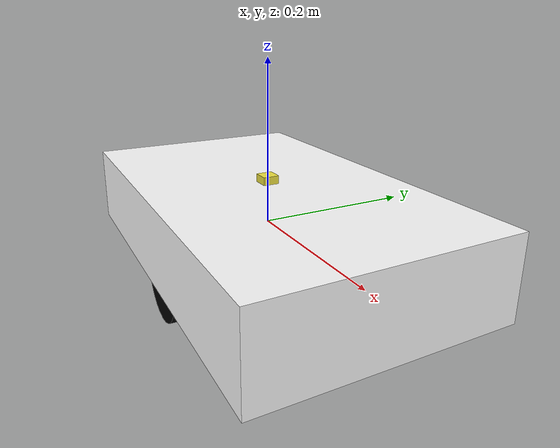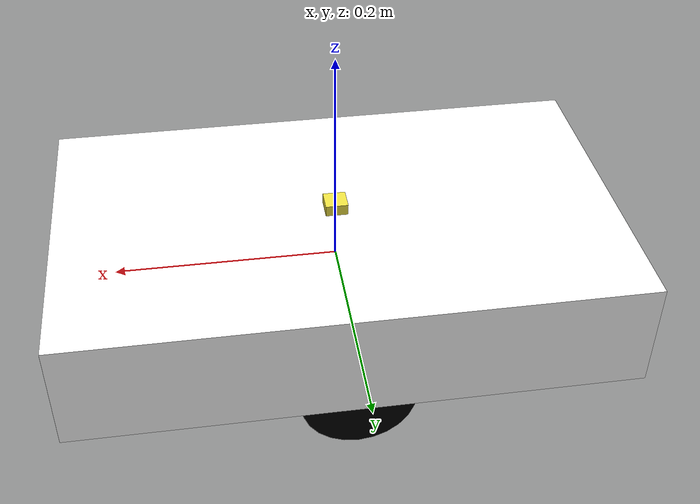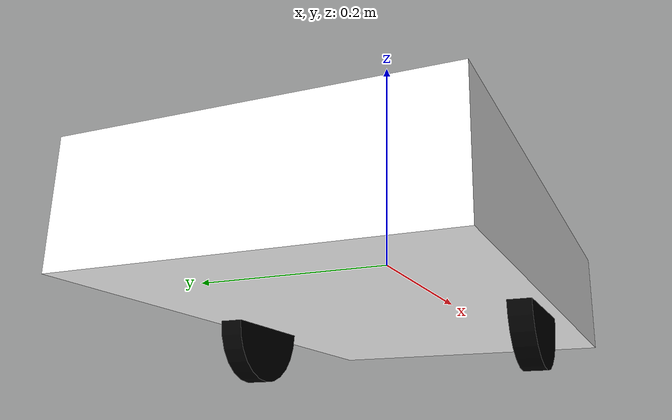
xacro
<?xml version="1.0"?>
<robot xmlns:xacro="http://ros.org/wiki/xacro" name="rwd">

<!-- USEFUL CONSTANTS -->
<!-- size = x y z -->
<xacro:property name="robot_size" value="0.5 0.3 0.1"/>
<xacro:property name="robot_mass" value="5.0"/>
<xacro:property name="wheel_x" value="0"/>
<xacro:property name="wheel_y" value=".13"/>
<xacro:property name="wheel_z" value="-0.05"/>
<xacro:property name="origin" value="0 0 0"/>

  <link name="base_link">
    <visual>
      <geometry>
        <box size="${robot_size}"/>
      </geometry>
      <material name="white">
        <color rgba="1 1 1 1"/>
      </material>
    </visual>
    <collision>
      <geometry>
        <box size="${robot_size}"/>
      </geometry>
    </collision>
    <inertial>
      <mass value="${robot_mass}"/>
      <origin xyz="${origin}" rpy="${origin}"/>
      <inertia
        ixx="0.1" ixy="0.0" ixz="0.0"
        iyy="0.1" iyz="0.0"
        izz="0.1"/>
    </inertial>
  </link>

  <!-- Include the wheel macro -->
  <xacro:include filename="./wheel.xacro"/>

  <!-- Instantiate wheels -->
  <xacro:wheel name="wheel_rl" parent_link="base_link" xyz="${-wheel_x} ${wheel_y} ${wheel_z}"/>
  <xacro:wheel name="wheel_rr" parent_link="base_link" xyz="${-wheel_x} ${-wheel_y} ${wheel_z}"/>

  <xacro:include filename="$(find diff_drive_control)/urdf/imu.xacro"/>
  <xacro:imu_sensor xyz="0 0 0.05" rpy="${origin}" parent="base_link"/>

  <ros2_control name="GazeboSimSystem" type="system">
    <hardware>
        <plugin>gz_ros2_control/GazeboSimSystem</plugin>
    </hardware>
    <joint name="joint_wheel_rl">
        <command_interface name="velocity">
            <param name="min">-1</param>
            <param name="max">1</param>
        </command_interface>
        <state_interface name="position"/>
        <state_interface name="velocity"/>
    </joint>
    <joint name="joint_wheel_rr">
        <command_interface name="velocity">
            <param name="min">-1</param>
            <param name="max">1</param>
        </command_interface>
        <state_interface name="position"/>
        <state_interface name="velocity"/>
    </joint>
    <joint name="joint_wheel_fl">
        <state_interface name="position"/>
        <state_interface name="velocity"/>
    </joint>
    <joint name="joint_wheel_fr">
        <state_interface name="position"/>
        <state_interface name="velocity"/>
    </joint>
  </ros2_control>

  <gazebo>
    <!-- joint state publisher -->
    <plugin filename="gz_ros2_control-system" name="gz_ros2_control::GazeboSimROS2ControlPlugin">
        <parameters>$(find diff_drive_control)/config/rwd_diff_controller.yaml</parameters>
    </plugin>
  </gazebo>

  <gazebo reference="wheel_rl">
    <mu1 value="0.17"/>
    <mu2 value="0.085"/>
    <slip1>0.2</slip1>
    <slip2>0.2</slip2>
  </gazebo>
  <gazebo reference="wheel_rr">
    <mu1 value="0.17"/>
    <mu2 value="0.085"/>
    <slip1>0.2</slip1>
    <slip2>0.2</slip2>
  </gazebo>

</robot>

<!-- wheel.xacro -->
<robot xmlns:xacro="http://ros.org/wiki/xacro" name="wheel">

<xacro:property name="wheel_len" value="0.02"/>
<xacro:property name="wheel_rad" value="0.05"/>

  <xacro:macro name="wheel" params="name parent_link xyz">
    <link name="${name}">
      <visual>
        <origin xyz="0 0 0" rpy="1.5708 0 0"/>
        <geometry>
          <cylinder radius="${wheel_rad}" length="${wheel_len}"/>
        </geometry>
        <material name="black">
          <color rgba="0 0 0 1"/>
        </material>
      </visual>
      <collision>
        <origin xyz="0 0 0" rpy="1.5708 0 0"/>
        <geometry>
          <cylinder radius="${wheel_rad}" length="${wheel_len}"/>
        </geometry>
      </collision>
      <inertial>
      <!-- mass was 0.2 -->
        <mass value="2"/>
        <origin xyz="0 0 0" rpy="0 0 0"/>
        <inertia
          ixx="0.001" ixy="0.0" ixz="0.0"
          iyy="0.001" iyz="0.0"
          izz="0.001"/>
      </inertial>
    </link>

    <joint name="joint_${name}" type="continuous">
      <parent link="${parent_link}"/>
      <child link="${name}"/>
      <origin xyz="${xyz}" rpy="0 0 0"/>
      <axis xyz="0 1 0"/>
    </joint>
  </xacro:macro>

</robot>

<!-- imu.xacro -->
<robot xmlns:xacro="http://www.ros.org/wiki/xacro" name="imu">

<xacro:macro name="imu_sensor" params="xyz rpy parent">
    <joint name="imu_sensor_joint" type="fixed">
        <axis xyz="0 0 1" />
        <origin xyz="${xyz}" rpy="${rpy}"/>
        <parent link="${parent}"/>
        <child link="imu_sensor_link"/>
    </joint>

    <link name="imu_sensor_link">
        <collision>
            <origin xyz="0 0 0" rpy="0 0 0"/>
            <geometry>
                <box size="0.02 0.02 0.02"/>
            </geometry>
        </collision>
        <visual>
            <origin xyz="0 0 0" rpy="0 0 0"/>
            <geometry>
                <box size="0.02 0.02 0.02"/>
            </geometry>
        </visual>
        <inertial>
            <mass value="0.001" />
            <origin xyz="0 0 0" rpy="0 0 0"/>
            <inertia ixx="0.00000015" ixy="0" ixz="0" iyy="0.00000015" iyz="0" izz="0.00000015" />
        </inertial>
    </link>

    <gazebo reference="imu_sensor_link">
        <gravity>true</gravity>
        <sensor name='imu_sensor' type='imu'>
            <always_on>1</always_on>
            <update_rate>1000</update_rate>
            <visualize>1</visualize>
            <topic>imu</topic>
            <plugin
                filename="gz-sim-imu-system"
                name="gz::sim::systems::Imu">
            </plugin>
        </sensor>
    </gazebo>

</xacro:macro>

</robot>
